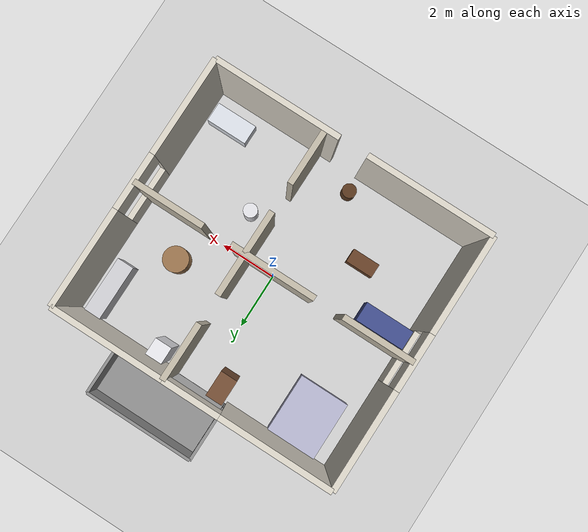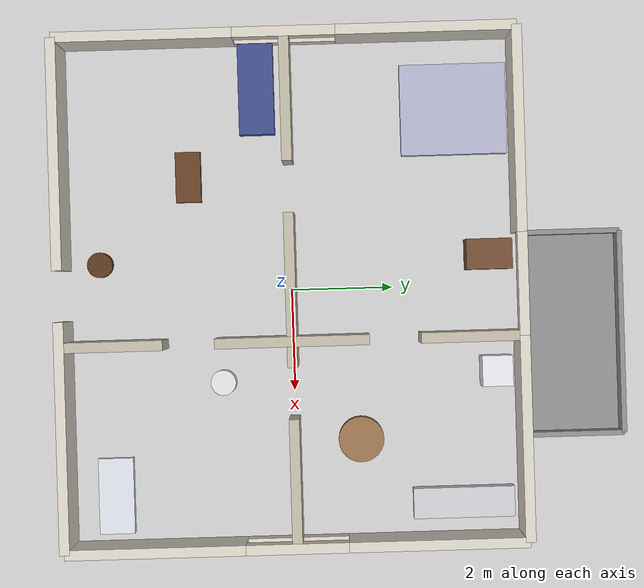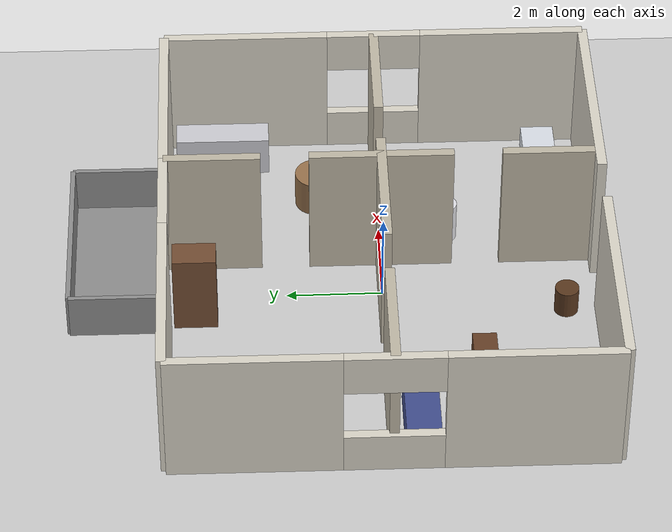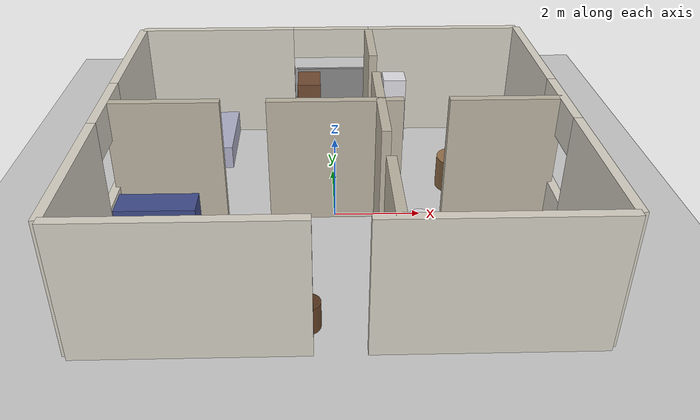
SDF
<?xml version="1.0" encoding="UTF-8"?>
<sdf version="1.8">

  <world name="First_world">

    <!-- Plugins for gz user interface -->

    <plugin
      filename="gz-sim-physics-system"
      name="gz::sim::systems::Physics">
    </plugin>

    <plugin
      filename="gz-sim-user-commands-system"
      name="gz::sim::systems::UserCommands">
    </plugin>

    <plugin
      filename="gz-sim-scene-broadcaster-system"
      name="gz::sim::systems::SceneBroadcaster">
    </plugin>

    <!-- URIs to official Gazebo Fuel URLs  -->
    <include>
      <uri>https://fuel.gazebosim.org/1.0/OpenRobotics/models/Sun</uri>
    </include>

    <include>
      <uri>https://fuel.gazebosim.org/1.0/OpenRobotics/models/Ground Plane</uri>
    </include>

    <!-- Robot model including -->

<!-- the 4 room apartment model including -->
<include>
  <uri>model://four_room_apartment</uri>
  <pose>0 0 0 0 0 0</pose>
</include>
  </world>

</sdf>

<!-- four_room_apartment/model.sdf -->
<sdf version="1.8">
  <model name="apartment_4rooms">
    <static>true</static>
    <pose>0 0 0 0 0 0</pose>

    <link name="building_link">
      <pose>0 0 0 0 0 0</pose>

      <collision name="front_wall_a_collision">
        <pose>-2.75 -4.5 1.5 0 0 0</pose>
        <geometry>
          <box><size>4.5 0.2 3.0</size></box>
        </geometry>
      </collision>
      <visual name="front_wall_a_visual">
        <pose>-2.75 -4.5 1.5 0 0 0</pose>
        <geometry>
          <box><size>4.5 0.2 3.0</size></box>
        </geometry>
        <material><diffuse>0.85 0.83 0.78 1.0</diffuse></material>
      </visual>

      <collision name="front_wall_b_collision">
        <pose>2.75 -4.5 1.5 0 0 0</pose>
        <geometry>
          <box><size>4.5 0.2 3.0</size></box>
        </geometry>
      </collision>
      <visual name="front_wall_b_visual">
        <pose>2.75 -4.5 1.5 0 0 0</pose>
        <geometry>
          <box><size>4.5 0.2 3.0</size></box>
        </geometry>
        <material><diffuse>0.85 0.83 0.78 1.0</diffuse></material>
      </visual>

      <collision name="back_wall_a_collision">
        <pose>-3 4.5 1.5 0 0 0</pose>
        <geometry>
          <box><size>4 0.2 3.0</size></box>
        </geometry>
      </collision>
      <visual name="back_wall_a_visual">
        <pose>-3 4.5 1.5 0 0 0</pose>
        <geometry>
          <box><size>4 0.2 3.0</size></box>
        </geometry>
        <material><diffuse>0.85 0.83 0.78 1.0</diffuse></material>
      </visual>

      <collision name="back_wall_b_collision">
        <pose>3 4.5 1.5 0 0 0</pose>
        <geometry>
          <box><size>4 0.2 3.0</size></box>
        </geometry>
      </collision>
      <visual name="back_wall_b_visual">
        <pose>3 4.5 1.5 0 0 0</pose>
        <geometry>
          <box><size>4 0.2 3.0</size></box>
        </geometry>
        <material><diffuse>0.85 0.83 0.78 1.0</diffuse></material>
      </visual>

      <collision name="back_wall_lintel_collision">
        <pose>0 4.5 2.6 0 0 0</pose>
        <geometry>
          <box><size>2 0.2 0.8</size></box>
        </geometry>
      </collision>
      <visual name="back_wall_lintel_visual">
        <pose>0 4.5 2.6 0 0 0</pose>
        <geometry>
          <box><size>2 0.2 0.8</size></box>
        </geometry>
        <material><diffuse>0.85 0.83 0.78 1.0</diffuse></material>
      </visual>

      <collision name="left_wall_a_collision">
        <pose>-5 -2.75 1.5 0 0 0</pose>
        <geometry>
          <box><size>0.2 3.5 3.0</size></box>
        </geometry>
      </collision>
      <visual name="left_wall_a_visual">
        <pose>-5 -2.75 1.5 0 0 0</pose>
        <geometry>
          <box><size>0.2 3.5 3.0</size></box>
        </geometry>
        <material><diffuse>0.85 0.83 0.78 1.0</diffuse></material>
      </visual>

      <collision name="left_wall_b_collision">
        <pose>-5 2.75 1.5 0 0 0</pose>
        <geometry>
          <box><size>0.2 3.5 3.0</size></box>
        </geometry>
      </collision>
      <visual name="left_wall_b_visual">
        <pose>-5 2.75 1.5 0 0 0</pose>
        <geometry>
          <box><size>0.2 3.5 3.0</size></box>
        </geometry>
        <material><diffuse>0.85 0.83 0.78 1.0</diffuse></material>
      </visual>

      <collision name="left_wall_sill_collision">
        <pose>-5 0 0.45 0 0 0</pose>
        <geometry>
          <box><size>0.2 2 0.9</size></box>
        </geometry>
      </collision>
      <visual name="left_wall_sill_visual">
        <pose>-5 0 0.45 0 0 0</pose>
        <geometry>
          <box><size>0.2 2 0.9</size></box>
        </geometry>
        <material><diffuse>0.85 0.83 0.78 1.0</diffuse></material>
      </visual>

      <collision name="left_wall_lintel_collision">
        <pose>-5 0 2.55 0 0 0</pose>
        <geometry>
          <box><size>0.2 2 0.9</size></box>
        </geometry>
      </collision>
      <visual name="left_wall_lintel_visual">
        <pose>-5 0 2.55 0 0 0</pose>
        <geometry>
          <box><size>0.2 2 0.9</size></box>
        </geometry>
        <material><diffuse>0.85 0.83 0.78 1.0</diffuse></material>
      </visual>

      <collision name="right_wall_a_collision">
        <pose>5 -2.75 1.5 0 0 0</pose>
        <geometry>
          <box><size>0.2 3.5 3.0</size></box>
        </geometry>
      </collision>
      <visual name="right_wall_a_visual">
        <pose>5 -2.75 1.5 0 0 0</pose>
        <geometry>
          <box><size>0.2 3.5 3.0</size></box>
        </geometry>
        <material><diffuse>0.85 0.83 0.78 1.0</diffuse></material>
      </visual>

      <collision name="right_wall_b_collision">
        <pose>5 2.75 1.5 0 0 0</pose>
        <geometry>
          <box><size>0.2 3.5 3.0</size></box>
        </geometry>
      </collision>
      <visual name="right_wall_b_visual">
        <pose>5 2.75 1.5 0 0 0</pose>
        <geometry>
          <box><size>0.2 3.5 3.0</size></box>
        </geometry>
        <material><diffuse>0.85 0.83 0.78 1.0</diffuse></material>
      </visual>

      <collision name="right_wall_sill_collision">
        <pose>5 0 0.45 0 0 0</pose>
        <geometry>
          <box><size>0.2 2 0.9</size></box>
        </geometry>
      </collision>
      <visual name="right_wall_sill_visual">
        <pose>5 0 0.45 0 0 0</pose>
        <geometry>
          <box><size>0.2 2 0.9</size></box>
        </geometry>
        <material><diffuse>0.85 0.83 0.78 1.0</diffuse></material>
      </visual>

      <collision name="right_wall_lintel_collision">
        <pose>5 0 2.55 0 0 0</pose>
        <geometry>
          <box><size>0.2 2 0.9</size></box>
        </geometry>
      </collision>
      <visual name="right_wall_lintel_visual">
        <pose>5 0 2.55 0 0 0</pose>
        <geometry>
          <box><size>0.2 2 0.9</size></box>
        </geometry>
        <material><diffuse>0.85 0.83 0.78 1.0</diffuse></material>
      </visual>

      <collision name="balcony_floor_collision">
        <pose>1 5.5 -0.05 0 0 0</pose>
        <geometry>
          <box><size>4 2 0.1</size></box>
        </geometry>
      </collision>
      <visual name="balcony_floor_visual">
        <pose>1 5.5 -0.05 0 0 0</pose>
        <geometry>
          <box><size>4 2 0.1</size></box>
        </geometry>
        <material><diffuse>0.55 0.55 0.55 1.0</diffuse></material>
      </visual>

      <collision name="balcony_rail_outer_collision">
        <pose>1 6.5 0.5 0 0 0</pose>
        <geometry>
          <box><size>4 0.1 1.0</size></box>
        </geometry>
      </collision>
      <visual name="balcony_rail_outer_visual">
        <pose>1 6.5 0.5 0 0 0</pose>
        <geometry>
          <box><size>4 0.1 1.0</size></box>
        </geometry>
        <material><diffuse>0.55 0.55 0.55 1.0</diffuse></material>
      </visual>

      <collision name="balcony_rail_left_collision">
        <pose>-1 5.5 0.5 0 0 0</pose>
        <geometry>
          <box><size>0.1 2 1.0</size></box>
        </geometry>
      </collision>
      <visual name="balcony_rail_left_visual">
        <pose>-1 5.5 0.5 0 0 0</pose>
        <geometry>
          <box><size>0.1 2 1.0</size></box>
        </geometry>
        <material><diffuse>0.55 0.55 0.55 1.0</diffuse></material>
      </visual>

      <collision name="balcony_rail_right_collision">
        <pose>3 5.5 0.5 0 0 0</pose>
        <geometry>
          <box><size>0.1 2 1.0</size></box>
        </geometry>
      </collision>
      <visual name="balcony_rail_right_visual">
        <pose>3 5.5 0.5 0 0 0</pose>
        <geometry>
          <box><size>0.1 2 1.0</size></box>
        </geometry>
        <material><diffuse>0.55 0.55 0.55 1.0</diffuse></material>
      </visual>

      <collision name="int_v_1_collision">
        <pose>1 -3.5 1.5 0 0 0</pose>
        <geometry>
          <box><size>0.2 2 3.0</size></box>
        </geometry>
      </collision>
      <visual name="int_v_1_visual">
        <pose>1 -3.5 1.5 0 0 0</pose>
        <geometry>
          <box><size>0.2 2 3.0</size></box>
        </geometry>
        <material><diffuse>0.75 0.72 0.65 1.0</diffuse></material>
      </visual>

      <collision name="int_v_2_collision">
        <pose>1 0 1.5 0 0 0</pose>
        <geometry>
          <box><size>0.2 3 3.0</size></box>
        </geometry>
      </collision>
      <visual name="int_v_2_visual">
        <pose>1 0 1.5 0 0 0</pose>
        <geometry>
          <box><size>0.2 3 3.0</size></box>
        </geometry>
        <material><diffuse>0.75 0.72 0.65 1.0</diffuse></material>
      </visual>

      <collision name="int_v_3_collision">
        <pose>1 3.5 1.5 0 0 0</pose>
        <geometry>
          <box><size>0.2 2 3.0</size></box>
        </geometry>
      </collision>
      <visual name="int_v_3_visual">
        <pose>1 3.5 1.5 0 0 0</pose>
        <geometry>
          <box><size>0.2 2 3.0</size></box>
        </geometry>
        <material><diffuse>0.75 0.72 0.65 1.0</diffuse></material>
      </visual>

      <collision name="int_h_1_collision">
        <pose>-3.75 0 1.5 0 0 0</pose>
        <geometry>
          <box><size>2.5 0.2 3.0</size></box>
        </geometry>
      </collision>
      <visual name="int_h_1_visual">
        <pose>-3.75 0 1.5 0 0 0</pose>
        <geometry>
          <box><size>2.5 0.2 3.0</size></box>
        </geometry>
        <material><diffuse>0.75 0.72 0.65 1.0</diffuse></material>
      </visual>

      <collision name="int_h_2_collision">
        <pose>0 0 1.5 0 0 0</pose>
        <geometry>
          <box><size>3 0.2 3.0</size></box>
        </geometry>
      </collision>
      <visual name="int_h_2_visual">
        <pose>0 0 1.5 0 0 0</pose>
        <geometry>
          <box><size>3 0.2 3.0</size></box>
        </geometry>
        <material><diffuse>0.75 0.72 0.65 1.0</diffuse></material>
      </visual>

      <collision name="int_h_3_collision">
        <pose>3.75 0 1.5 0 0 0</pose>
        <geometry>
          <box><size>2.5 0.2 3.0</size></box>
        </geometry>
      </collision>
      <visual name="int_h_3_visual">
        <pose>3.75 0 1.5 0 0 0</pose>
        <geometry>
          <box><size>2.5 0.2 3.0</size></box>
        </geometry>
        <material><diffuse>0.75 0.72 0.65 1.0</diffuse></material>
      </visual>

      <collision name="sofa_collision">
        <pose>-4.0 -0.6 0.4 0 0 0</pose>
        <geometry>
          <box><size>1.8 0.7 0.8</size></box>
        </geometry>
      </collision>
      <visual name="sofa_visual">
        <pose>-4.0 -0.6 0.4 0 0 0</pose>
        <geometry>
          <box><size>1.8 0.7 0.8</size></box>
        </geometry>
        <material><diffuse>0.25 0.3 0.55 1.0</diffuse></material>
      </visual>

      <collision name="coffee_table_collision">
        <pose>-2.3 -2.0 0.25 0 0 0</pose>
        <geometry>
          <box><size>1.0 0.5 0.5</size></box>
        </geometry>
      </collision>
      <visual name="coffee_table_visual">
        <pose>-2.3 -2.0 0.25 0 0 0</pose>
        <geometry>
          <box><size>1.0 0.5 0.5</size></box>
        </geometry>
        <material><diffuse>0.4 0.25 0.15 1.0</diffuse></material>
      </visual>

      <collision name="side_table_collision">
        <pose>-0.6 -3.8 0.3 0 0 0</pose>
        <geometry>
          <cylinder><radius>0.25</radius><length>0.6</length></cylinder>
        </geometry>
      </collision>
      <visual name="side_table_visual">
        <pose>-0.6 -3.8 0.3 0 0 0</pose>
        <geometry>
          <cylinder><radius>0.25</radius><length>0.6</length></cylinder>
        </geometry>
        <material><diffuse>0.35 0.22 0.12 1.0</diffuse></material>
      </visual>

      <collision name="bed_collision">
        <pose>-3.5 3.3 0.3 0 0 0</pose>
        <geometry>
          <box><size>1.8 2.1 0.6</size></box>
        </geometry>
      </collision>
      <visual name="bed_visual">
        <pose>-3.5 3.3 0.3 0 0 0</pose>
        <geometry>
          <box><size>1.8 2.1 0.6</size></box>
        </geometry>
        <material><diffuse>0.7 0.7 0.8 1.0</diffuse></material>
      </visual>

      <collision name="wardrobe_collision">
        <pose>-0.6 3.9 0.9 0 0 0</pose>
        <geometry>
          <box><size>0.6 0.9 1.8</size></box>
        </geometry>
      </collision>
      <visual name="wardrobe_visual">
        <pose>-0.6 3.9 0.9 0 0 0</pose>
        <geometry>
          <box><size>0.6 0.9 1.8</size></box>
        </geometry>
        <material><diffuse>0.45 0.3 0.2 1.0</diffuse></material>
      </visual>

      <collision name="kitchen_counter_collision">
        <pose>4.3 3.3 0.45 0 0 0</pose>
        <geometry>
          <box><size>0.6 2.0 0.9</size></box>
        </geometry>
      </collision>
      <visual name="kitchen_counter_visual">
        <pose>4.3 3.3 0.45 0 0 0</pose>
        <geometry>
          <box><size>0.6 2.0 0.9</size></box>
        </geometry>
        <material><diffuse>0.8 0.8 0.82 1.0</diffuse></material>
      </visual>

      <collision name="fridge_collision">
        <pose>1.7 4.0 0.9 0 0 0</pose>
        <geometry>
          <box><size>0.6 0.6 1.8</size></box>
        </geometry>
      </collision>
      <visual name="fridge_visual">
        <pose>1.7 4.0 0.9 0 0 0</pose>
        <geometry>
          <box><size>0.6 0.6 1.8</size></box>
        </geometry>
        <material><diffuse>0.9 0.9 0.92 1.0</diffuse></material>
      </visual>

      <collision name="kitchen_table_collision">
        <pose>3.0 1.3 0.4 0 0 0</pose>
        <geometry>
          <cylinder><radius>0.45</radius><length>0.8</length></cylinder>
        </geometry>
      </collision>
      <visual name="kitchen_table_visual">
        <pose>3.0 1.3 0.4 0 0 0</pose>
        <geometry>
          <cylinder><radius>0.45</radius><length>0.8</length></cylinder>
        </geometry>
        <material><diffuse>0.6 0.45 0.3 1.0</diffuse></material>
      </visual>

      <collision name="bathtub_collision">
        <pose>4.0 -3.6 0.25 0 0 0</pose>
        <geometry>
          <box><size>1.5 0.7 0.5</size></box>
        </geometry>
      </collision>
      <visual name="bathtub_visual">
        <pose>4.0 -3.6 0.25 0 0 0</pose>
        <geometry>
          <box><size>1.5 0.7 0.5</size></box>
        </geometry>
        <material><diffuse>0.85 0.87 0.9 1.0</diffuse></material>
      </visual>

      <collision name="sink_collision">
        <pose>1.8 -1.4 0.45 0 0 0</pose>
        <geometry>
          <cylinder><radius>0.25</radius><length>0.9</length></cylinder>
        </geometry>
      </collision>
      <visual name="sink_visual">
        <pose>1.8 -1.4 0.45 0 0 0</pose>
        <geometry>
          <cylinder><radius>0.25</radius><length>0.9</length></cylinder>
        </geometry>
        <material><diffuse>0.88 0.88 0.9 1.0</diffuse></material>
      </visual>

    </link>
  </model>
</sdf>
